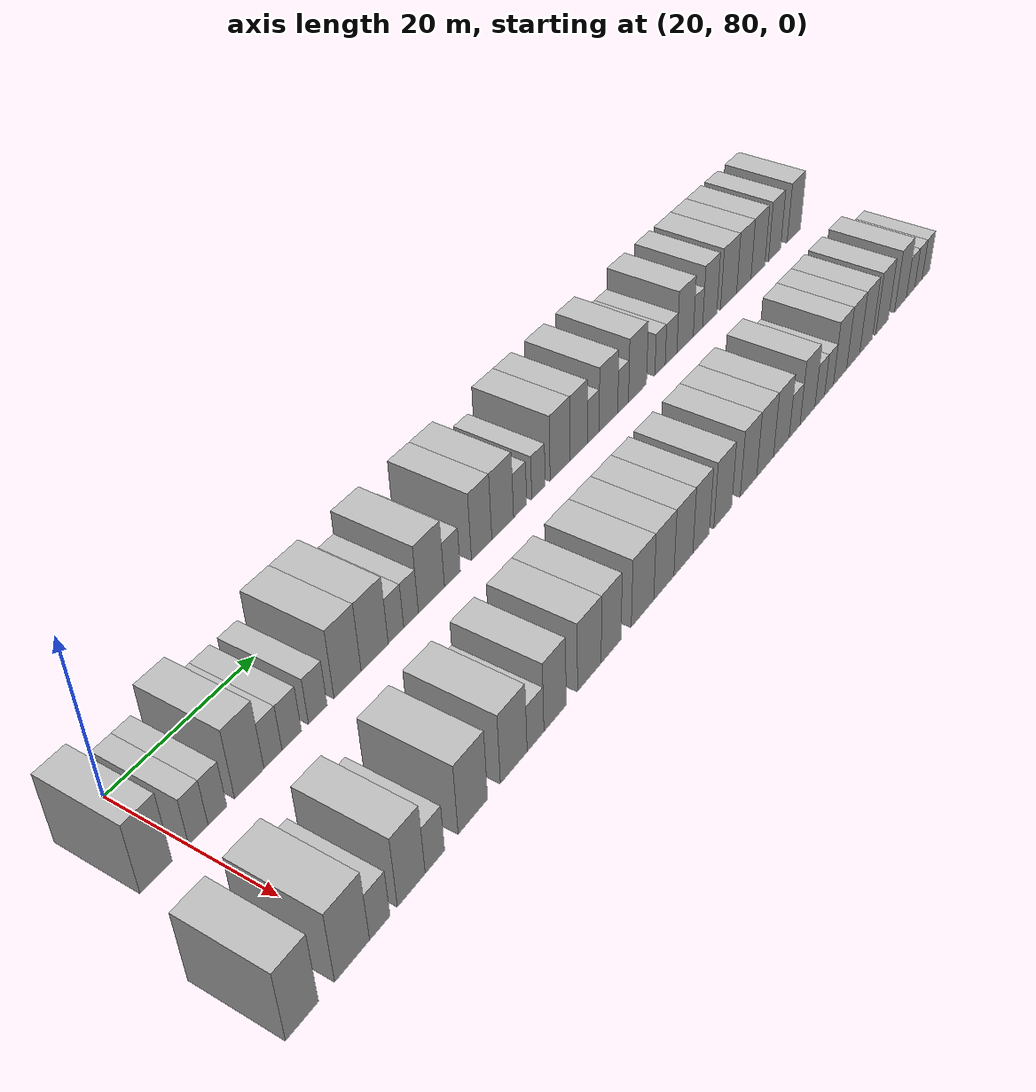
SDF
<sdf version="1.6">
 <world name="default">
  <model name="building_62">
   <static>1</static>
   <pose>25.0000 76.0917 0 0.000000 0.000000 0.000000</pose>
   <link name="link">
    <pose>0 0 4.50 0 0 0</pose>
    <collision name="collision"><geometry><box><size>10.0000 3.8404 9.0000</size></box></geometry></collision>
    <visual name="visual">
     <cast_shadows>0</cast_shadows>
     <geometry><box><size>10.0000 3.8404 9.0000</size></box></geometry>
     <material>
      <script>
       <uri>model://HANNAS_wall/materials/scripts</uri>
       <uri>model://HANNAS_wall/materials/textures</uri>
       <name>vrc/HANNAS_wall</name>
      </script>
     </material>
    </visual>
   </link>
  </model>
  <model name="building_63">
   <static>1</static>
   <pose>25.0000 81.2333 0 0.000000 0.000000 0.000000</pose>
   <link name="link">
    <pose>0 0 3.00 0 0 0</pose>
    <collision name="collision"><geometry><box><size>10.0000 2.4429 6.0000</size></box></geometry></collision>
    <visual name="visual">
     <cast_shadows>0</cast_shadows>
     <geometry><box><size>10.0000 2.4429 6.0000</size></box></geometry>
     <material>
      <script>
       <uri>model://HANNAS_wall/materials/scripts</uri>
       <uri>model://HANNAS_wall/materials/textures</uri>
       <name>vrc/HANNAS_wall</name>
      </script>
     </material>
    </visual>
   </link>
  </model>
  <model name="building_64">
   <static>1</static>
   <pose>25.0000 83.6559 0 0.000000 0.000000 0.000000</pose>
   <link name="link">
    <pose>0 0 3.00 0 0 0</pose>
    <collision name="collision"><geometry><box><size>10.0000 2.4022 6.0000</size></box></geometry></collision>
    <visual name="visual">
     <cast_shadows>0</cast_shadows>
     <geometry><box><size>10.0000 2.4022 6.0000</size></box></geometry>
     <material>
      <script>
       <uri>model://HANNAS_wall/materials/scripts</uri>
       <uri>model://HANNAS_wall/materials/textures</uri>
       <name>vrc/HANNAS_wall</name>
      </script>
     </material>
    </visual>
   </link>
  </model>
  <model name="building_65">
   <static>1</static>
   <pose>25.0000 87.8234 0 0.000000 0.000000 0.000000</pose>
   <link name="link">
    <pose>0 0 4.50 0 0 0</pose>
    <collision name="collision"><geometry><box><size>10.0000 3.9328 9.0000</size></box></geometry></collision>
    <visual name="visual">
     <cast_shadows>0</cast_shadows>
     <geometry><box><size>10.0000 3.9328 9.0000</size></box></geometry>
     <material>
      <script>
       <uri>model://HANNAS_wall/materials/scripts</uri>
       <uri>model://HANNAS_wall/materials/textures</uri>
       <name>vrc/HANNAS_wall</name>
      </script>
     </material>
    </visual>
   </link>
  </model>
  <model name="building_66">
   <static>1</static>
   <pose>25.0000 91.0363 0 0.000000 0.000000 0.000000</pose>
   <link name="link">
    <pose>0 0 3.00 0 0 0</pose>
    <collision name="collision"><geometry><box><size>10.0000 2.4929 6.0000</size></box></geometry></collision>
    <visual name="visual">
     <cast_shadows>0</cast_shadows>
     <geometry><box><size>10.0000 2.4929 6.0000</size></box></geometry>
     <material>
      <script>
       <uri>model://HANNAS_wall/materials/scripts</uri>
       <uri>model://HANNAS_wall/materials/textures</uri>
       <name>vrc/HANNAS_wall</name>
      </script>
     </material>
    </visual>
   </link>
  </model>
  <model name="building_67">
   <static>1</static>
   <pose>25.0000 93.6499 0 0.000000 0.000000 0.000000</pose>
   <link name="link">
    <pose>0 0 3.00 0 0 0</pose>
    <collision name="collision"><geometry><box><size>10.0000 2.7342 6.0000</size></box></geometry></collision>
    <visual name="visual">
     <cast_shadows>0</cast_shadows>
     <geometry><box><size>10.0000 2.7342 6.0000</size></box></geometry>
     <material>
      <script>
       <uri>model://HANNAS_wall/materials/scripts</uri>
       <uri>model://HANNAS_wall/materials/textures</uri>
       <name>vrc/HANNAS_wall</name>
      </script>
     </material>
    </visual>
   </link>
  </model>
  <model name="building_68">
   <static>1</static>
   <pose>25.0000 97.3795 0 0.000000 0.000000 0.000000</pose>
   <link name="link">
    <pose>0 0 3.00 0 0 0</pose>
    <collision name="collision"><geometry><box><size>10.0000 2.7251 6.0000</size></box></geometry></collision>
    <visual name="visual">
     <cast_shadows>0</cast_shadows>
     <geometry><box><size>10.0000 2.7251 6.0000</size></box></geometry>
     <material>
      <script>
       <uri>model://HANNAS_wall/materials/scripts</uri>
       <uri>model://HANNAS_wall/materials/textures</uri>
       <name>vrc/HANNAS_wall</name>
      </script>
     </material>
    </visual>
   </link>
  </model>
  <model name="building_69">
   <static>1</static>
   <pose>25.0000 101.8052 0 0.000000 0.000000 0.000000</pose>
   <link name="link">
    <pose>0 0 4.50 0 0 0</pose>
    <collision name="collision"><geometry><box><size>10.0000 4.1262 9.0000</size></box></geometry></collision>
    <visual name="visual">
     <cast_shadows>0</cast_shadows>
     <geometry><box><size>10.0000 4.1262 9.0000</size></box></geometry>
     <material>
      <script>
       <uri>model://HANNAS_wall/materials/scripts</uri>
       <uri>model://HANNAS_wall/materials/textures</uri>
       <name>vrc/HANNAS_wall</name>
      </script>
     </material>
    </visual>
   </link>
  </model>
  <model name="building_70">
   <static>1</static>
   <pose>25.0000 106.0009 0 0.000000 0.000000 0.000000</pose>
   <link name="link">
    <pose>0 0 4.50 0 0 0</pose>
    <collision name="collision"><geometry><box><size>10.0000 4.2651 9.0000</size></box></geometry></collision>
    <visual name="visual">
     <cast_shadows>0</cast_shadows>
     <geometry><box><size>10.0000 4.2651 9.0000</size></box></geometry>
     <material>
      <script>
       <uri>model://HANNAS_wall/materials/scripts</uri>
       <uri>model://HANNAS_wall/materials/textures</uri>
       <name>vrc/HANNAS_wall</name>
      </script>
     </material>
    </visual>
   </link>
  </model>
  <model name="building_71">
   <static>1</static>
   <pose>25.0000 109.3912 0 0.000000 0.000000 0.000000</pose>
   <link name="link">
    <pose>0 0 3.00 0 0 0</pose>
    <collision name="collision"><geometry><box><size>10.0000 2.5154 6.0000</size></box></geometry></collision>
    <visual name="visual">
     <cast_shadows>0</cast_shadows>
     <geometry><box><size>10.0000 2.5154 6.0000</size></box></geometry>
     <material>
      <script>
       <uri>model://HANNAS_wall/materials/scripts</uri>
       <uri>model://HANNAS_wall/materials/textures</uri>
       <name>vrc/HANNAS_wall</name>
      </script>
     </material>
    </visual>
   </link>
  </model>
  <model name="building_72">
   <static>1</static>
   <pose>25.0000 111.8685 0 0.000000 0.000000 0.000000</pose>
   <link name="link">
    <pose>0 0 3.00 0 0 0</pose>
    <collision name="collision"><geometry><box><size>10.0000 2.4392 6.0000</size></box></geometry></collision>
    <visual name="visual">
     <cast_shadows>0</cast_shadows>
     <geometry><box><size>10.0000 2.4392 6.0000</size></box></geometry>
     <material>
      <script>
       <uri>model://HANNAS_wall/materials/scripts</uri>
       <uri>model://HANNAS_wall/materials/textures</uri>
       <name>vrc/HANNAS_wall</name>
      </script>
     </material>
    </visual>
   </link>
  </model>
  <model name="building_73">
   <static>1</static>
   <pose>25.0000 115.3082 0 0.000000 0.000000 0.000000</pose>
   <link name="link">
    <pose>0 0 4.50 0 0 0</pose>
    <collision name="collision"><geometry><box><size>10.0000 4.4402 9.0000</size></box></geometry></collision>
    <visual name="visual">
     <cast_shadows>0</cast_shadows>
     <geometry><box><size>10.0000 4.4402 9.0000</size></box></geometry>
     <material>
      <script>
       <uri>model://HANNAS_wall/materials/scripts</uri>
       <uri>model://HANNAS_wall/materials/textures</uri>
       <name>vrc/HANNAS_wall</name>
      </script>
     </material>
    </visual>
   </link>
  </model>
  <model name="building_74">
   <static>1</static>
   <pose>25.0000 118.9179 0 0.000000 0.000000 0.000000</pose>
   <link name="link">
    <pose>0 0 3.00 0 0 0</pose>
    <collision name="collision"><geometry><box><size>10.0000 2.7792 6.0000</size></box></geometry></collision>
    <visual name="visual">
     <cast_shadows>0</cast_shadows>
     <geometry><box><size>10.0000 2.7792 6.0000</size></box></geometry>
     <material>
      <script>
       <uri>model://HANNAS_wall/materials/scripts</uri>
       <uri>model://HANNAS_wall/materials/textures</uri>
       <name>vrc/HANNAS_wall</name>
      </script>
     </material>
    </visual>
   </link>
  </model>
  <model name="building_75">
   <static>1</static>
   <pose>25.0000 124.1713 0 0.000000 0.000000 0.000000</pose>
   <link name="link">
    <pose>0 0 4.50 0 0 0</pose>
    <collision name="collision"><geometry><box><size>10.0000 3.7276 9.0000</size></box></geometry></collision>
    <visual name="visual">
     <cast_shadows>0</cast_shadows>
     <geometry><box><size>10.0000 3.7276 9.0000</size></box></geometry>
     <material>
      <script>
       <uri>model://HANNAS_wall/materials/scripts</uri>
       <uri>model://HANNAS_wall/materials/textures</uri>
       <name>vrc/HANNAS_wall</name>
      </script>
     </material>
    </visual>
   </link>
  </model>
  <model name="building_76">
   <static>1</static>
   <pose>25.0000 128.0973 0 0.000000 0.000000 0.000000</pose>
   <link name="link">
    <pose>0 0 4.50 0 0 0</pose>
    <collision name="collision"><geometry><box><size>10.0000 4.1245 9.0000</size></box></geometry></collision>
    <visual name="visual">
     <cast_shadows>0</cast_shadows>
     <geometry><box><size>10.0000 4.1245 9.0000</size></box></geometry>
     <material>
      <script>
       <uri>model://HANNAS_wall/materials/scripts</uri>
       <uri>model://HANNAS_wall/materials/textures</uri>
       <name>vrc/HANNAS_wall</name>
      </script>
     </material>
    </visual>
   </link>
  </model>
  <model name="building_77">
   <static>1</static>
   <pose>25.0000 131.4325 0 0.000000 0.000000 0.000000</pose>
   <link name="link">
    <pose>0 0 3.00 0 0 0</pose>
    <collision name="collision"><geometry><box><size>10.0000 2.5459 6.0000</size></box></geometry></collision>
    <visual name="visual">
     <cast_shadows>0</cast_shadows>
     <geometry><box><size>10.0000 2.5459 6.0000</size></box></geometry>
     <material>
      <script>
       <uri>model://HANNAS_wall/materials/scripts</uri>
       <uri>model://HANNAS_wall/materials/textures</uri>
       <name>vrc/HANNAS_wall</name>
      </script>
     </material>
    </visual>
   </link>
  </model>
  <model name="building_78">
   <static>1</static>
   <pose>25.0000 135.0507 0 0.000000 0.000000 0.000000</pose>
   <link name="link">
    <pose>0 0 3.00 0 0 0</pose>
    <collision name="collision"><geometry><box><size>10.0000 2.6905 6.0000</size></box></geometry></collision>
    <visual name="visual">
     <cast_shadows>0</cast_shadows>
     <geometry><box><size>10.0000 2.6905 6.0000</size></box></geometry>
     <material>
      <script>
       <uri>model://HANNAS_wall/materials/scripts</uri>
       <uri>model://HANNAS_wall/materials/textures</uri>
       <name>vrc/HANNAS_wall</name>
      </script>
     </material>
    </visual>
   </link>
  </model>
  <model name="building_79">
   <static>1</static>
   <pose>25.0000 139.4614 0 0.000000 0.000000 0.000000</pose>
   <link name="link">
    <pose>0 0 4.50 0 0 0</pose>
    <collision name="collision"><geometry><box><size>10.0000 4.1310 9.0000</size></box></geometry></collision>
    <visual name="visual">
     <cast_shadows>0</cast_shadows>
     <geometry><box><size>10.0000 4.1310 9.0000</size></box></geometry>
     <material>
      <script>
       <uri>model://HANNAS_wall/materials/scripts</uri>
       <uri>model://HANNAS_wall/materials/textures</uri>
       <name>vrc/HANNAS_wall</name>
      </script>
     </material>
    </visual>
   </link>
  </model>
  <model name="building_80">
   <static>1</static>
   <pose>25.0000 143.3464 0 0.000000 0.000000 0.000000</pose>
   <link name="link">
    <pose>0 0 4.50 0 0 0</pose>
    <collision name="collision"><geometry><box><size>10.0000 3.6390 9.0000</size></box></geometry></collision>
    <visual name="visual">
     <cast_shadows>0</cast_shadows>
     <geometry><box><size>10.0000 3.6390 9.0000</size></box></geometry>
     <material>
      <script>
       <uri>model://HANNAS_wall/materials/scripts</uri>
       <uri>model://HANNAS_wall/materials/textures</uri>
       <name>vrc/HANNAS_wall</name>
      </script>
     </material>
    </visual>
   </link>
  </model>
  <model name="building_81">
   <static>1</static>
   <pose>25.0000 146.4726 0 0.000000 0.000000 0.000000</pose>
   <link name="link">
    <pose>0 0 3.00 0 0 0</pose>
    <collision name="collision"><geometry><box><size>10.0000 2.6134 6.0000</size></box></geometry></collision>
    <visual name="visual">
     <cast_shadows>0</cast_shadows>
     <geometry><box><size>10.0000 2.6134 6.0000</size></box></geometry>
     <material>
      <script>
       <uri>model://HANNAS_wall/materials/scripts</uri>
       <uri>model://HANNAS_wall/materials/textures</uri>
       <name>vrc/HANNAS_wall</name>
      </script>
     </material>
    </visual>
   </link>
  </model>
  <model name="building_82">
   <static>1</static>
   <pose>25.0000 149.8544 0 0.000000 0.000000 0.000000</pose>
   <link name="link">
    <pose>0 0 4.50 0 0 0</pose>
    <collision name="collision"><geometry><box><size>10.0000 4.1502 9.0000</size></box></geometry></collision>
    <visual name="visual">
     <cast_shadows>0</cast_shadows>
     <geometry><box><size>10.0000 4.1502 9.0000</size></box></geometry>
     <material>
      <script>
       <uri>model://HANNAS_wall/materials/scripts</uri>
       <uri>model://HANNAS_wall/materials/textures</uri>
       <name>vrc/HANNAS_wall</name>
      </script>
     </material>
    </visual>
   </link>
  </model>
  <model name="building_83">
   <static>1</static>
   <pose>25.0000 153.1535 0 0.000000 0.000000 0.000000</pose>
   <link name="link">
    <pose>0 0 3.00 0 0 0</pose>
    <collision name="collision"><geometry><box><size>10.0000 2.4481 6.0000</size></box></geometry></collision>
    <visual name="visual">
     <cast_shadows>0</cast_shadows>
     <geometry><box><size>10.0000 2.4481 6.0000</size></box></geometry>
     <material>
      <script>
       <uri>model://HANNAS_wall/materials/scripts</uri>
       <uri>model://HANNAS_wall/materials/textures</uri>
       <name>vrc/HANNAS_wall</name>
      </script>
     </material>
    </visual>
   </link>
  </model>
  <model name="building_84">
   <static>1</static>
   <pose>25.0000 156.4888 0 0.000000 0.000000 0.000000</pose>
   <link name="link">
    <pose>0 0 4.50 0 0 0</pose>
    <collision name="collision"><geometry><box><size>10.0000 4.2226 9.0000</size></box></geometry></collision>
    <visual name="visual">
     <cast_shadows>0</cast_shadows>
     <geometry><box><size>10.0000 4.2226 9.0000</size></box></geometry>
     <material>
      <script>
       <uri>model://HANNAS_wall/materials/scripts</uri>
       <uri>model://HANNAS_wall/materials/textures</uri>
       <name>vrc/HANNAS_wall</name>
      </script>
     </material>
    </visual>
   </link>
  </model>
  <model name="building_85">
   <static>1</static>
   <pose>25.0000 161.8609 0 0.000000 0.000000 0.000000</pose>
   <link name="link">
    <pose>0 0 3.00 0 0 0</pose>
    <collision name="collision"><geometry><box><size>10.0000 2.5215 6.0000</size></box></geometry></collision>
    <visual name="visual">
     <cast_shadows>0</cast_shadows>
     <geometry><box><size>10.0000 2.5215 6.0000</size></box></geometry>
     <material>
      <script>
       <uri>model://HANNAS_wall/materials/scripts</uri>
       <uri>model://HANNAS_wall/materials/textures</uri>
       <name>vrc/HANNAS_wall</name>
      </script>
     </material>
    </visual>
   </link>
  </model>
  <model name="building_86">
   <static>1</static>
   <pose>25.0000 164.5614 0 0.000000 0.000000 0.000000</pose>
   <link name="link">
    <pose>0 0 3.00 0 0 0</pose>
    <collision name="collision"><geometry><box><size>10.0000 2.8797 6.0000</size></box></geometry></collision>
    <visual name="visual">
     <cast_shadows>0</cast_shadows>
     <geometry><box><size>10.0000 2.8797 6.0000</size></box></geometry>
     <material>
      <script>
       <uri>model://HANNAS_wall/materials/scripts</uri>
       <uri>model://HANNAS_wall/materials/textures</uri>
       <name>vrc/HANNAS_wall</name>
      </script>
     </material>
    </visual>
   </link>
  </model>
  <model name="building_87">
   <static>1</static>
   <pose>25.0000 168.0948 0 0.000000 0.000000 0.000000</pose>
   <link name="link">
    <pose>0 0 4.50 0 0 0</pose>
    <collision name="collision"><geometry><box><size>10.0000 4.1870 9.0000</size></box></geometry></collision>
    <visual name="visual">
     <cast_shadows>0</cast_shadows>
     <geometry><box><size>10.0000 4.1870 9.0000</size></box></geometry>
     <material>
      <script>
       <uri>model://HANNAS_wall/materials/scripts</uri>
       <uri>model://HANNAS_wall/materials/textures</uri>
       <name>vrc/HANNAS_wall</name>
      </script>
     </material>
    </visual>
   </link>
  </model>
  <model name="building_88">
   <static>1</static>
   <pose>25.0000 171.4040 0 0.000000 0.000000 0.000000</pose>
   <link name="link">
    <pose>0 0 3.00 0 0 0</pose>
    <collision name="collision"><geometry><box><size>10.0000 2.4314 6.0000</size></box></geometry></collision>
    <visual name="visual">
     <cast_shadows>0</cast_shadows>
     <geometry><box><size>10.0000 2.4314 6.0000</size></box></geometry>
     <material>
      <script>
       <uri>model://HANNAS_wall/materials/scripts</uri>
       <uri>model://HANNAS_wall/materials/textures</uri>
       <name>vrc/HANNAS_wall</name>
      </script>
     </material>
    </visual>
   </link>
  </model>
  <model name="building_89">
   <static>1</static>
   <pose>25.0000 174.5151 0 0.000000 0.000000 0.000000</pose>
   <link name="link">
    <pose>0 0 4.50 0 0 0</pose>
    <collision name="collision"><geometry><box><size>10.0000 3.7908 9.0000</size></box></geometry></collision>
    <visual name="visual">
     <cast_shadows>0</cast_shadows>
     <geometry><box><size>10.0000 3.7908 9.0000</size></box></geometry>
     <material>
      <script>
       <uri>model://HANNAS_wall/materials/scripts</uri>
       <uri>model://HANNAS_wall/materials/textures</uri>
       <name>vrc/HANNAS_wall</name>
      </script>
     </material>
    </visual>
   </link>
  </model>
  <model name="building_90">
   <static>1</static>
   <pose>25.0000 179.6231 0 0.000000 0.000000 0.000000</pose>
   <link name="link">
    <pose>0 0 4.50 0 0 0</pose>
    <collision name="collision"><geometry><box><size>10.0000 4.4250 9.0000</size></box></geometry></collision>
    <visual name="visual">
     <cast_shadows>0</cast_shadows>
     <geometry><box><size>10.0000 4.4250 9.0000</size></box></geometry>
     <material>
      <script>
       <uri>model://HANNAS_wall/materials/scripts</uri>
       <uri>model://HANNAS_wall/materials/textures</uri>
       <name>vrc/HANNAS_wall</name>
      </script>
     </material>
    </visual>
   </link>
  </model>
  <model name="building_91">
   <static>1</static>
   <pose>25.0000 183.8625 0 0.000000 0.000000 0.000000</pose>
   <link name="link">
    <pose>0 0 4.50 0 0 0</pose>
    <collision name="collision"><geometry><box><size>10.0000 4.0538 9.0000</size></box></geometry></collision>
    <visual name="visual">
     <cast_shadows>0</cast_shadows>
     <geometry><box><size>10.0000 4.0538 9.0000</size></box></geometry>
     <material>
      <script>
       <uri>model://HANNAS_wall/materials/scripts</uri>
       <uri>model://HANNAS_wall/materials/textures</uri>
       <name>vrc/HANNAS_wall</name>
      </script>
     </material>
    </visual>
   </link>
  </model>
  <model name="building_92">
   <static>1</static>
   <pose>25.0000 187.9202 0 0.000000 0.000000 0.000000</pose>
   <link name="link">
    <pose>0 0 4.50 0 0 0</pose>
    <collision name="collision"><geometry><box><size>10.0000 4.0617 9.0000</size></box></geometry></collision>
    <visual name="visual">
     <cast_shadows>0</cast_shadows>
     <geometry><box><size>10.0000 4.0617 9.0000</size></box></geometry>
     <material>
      <script>
       <uri>model://HANNAS_wall/materials/scripts</uri>
       <uri>model://HANNAS_wall/materials/textures</uri>
       <name>vrc/HANNAS_wall</name>
      </script>
     </material>
    </visual>
   </link>
  </model>
  <model name="building_93">
   <static>1</static>
   <pose>25.0000 192.7844 0 0.000000 0.000000 0.000000</pose>
   <link name="link">
    <pose>0 0 4.50 0 0 0</pose>
    <collision name="collision"><geometry><box><size>10.0000 3.6667 9.0000</size></box></geometry></collision>
    <visual name="visual">
     <cast_shadows>0</cast_shadows>
     <geometry><box><size>10.0000 3.6667 9.0000</size></box></geometry>
     <material>
      <script>
       <uri>model://HANNAS_wall/materials/scripts</uri>
       <uri>model://HANNAS_wall/materials/textures</uri>
       <name>vrc/HANNAS_wall</name>
      </script>
     </material>
    </visual>
   </link>
  </model>
  <model name="building_94">
   <static>1</static>
   <pose>25.0000 198.6874 0 0.000000 0.000000 0.000000</pose>
   <link name="link">
    <pose>0 0 4.50 0 0 0</pose>
    <collision name="collision"><geometry><box><size>10.0000 4.1394 9.0000</size></box></geometry></collision>
    <visual name="visual">
     <cast_shadows>0</cast_shadows>
     <geometry><box><size>10.0000 4.1394 9.0000</size></box></geometry>
     <material>
      <script>
       <uri>model://HANNAS_wall/materials/scripts</uri>
       <uri>model://HANNAS_wall/materials/textures</uri>
       <name>vrc/HANNAS_wall</name>
      </script>
     </material>
    </visual>
   </link>
  </model>
  <model name="building_162">
   <static>1</static>
   <pose>44.0000 72.1664 0 0.000000 0.000000 0.000000</pose>
   <link name="link">
    <pose>0 0 4.50 0 0 0</pose>
    <collision name="collision"><geometry><box><size>10.0000 3.9678 9.0000</size></box></geometry></collision>
    <visual name="visual">
     <cast_shadows>0</cast_shadows>
     <geometry><box><size>10.0000 3.9678 9.0000</size></box></geometry>
     <material>
      <script>
       <uri>model://HANNAS_wall/materials/scripts</uri>
       <uri>model://HANNAS_wall/materials/textures</uri>
       <name>vrc/HANNAS_wall</name>
      </script>
     </material>
    </visual>
   </link>
  </model>
  <model name="building_163">
   <static>1</static>
   <pose>44.0000 78.3973 0 0.000000 0.000000 0.000000</pose>
   <link name="link">
    <pose>0 0 4.50 0 0 0</pose>
    <collision name="collision"><geometry><box><size>10.0000 4.4941 9.0000</size></box></geometry></collision>
    <visual name="visual">
     <cast_shadows>0</cast_shadows>
     <geometry><box><size>10.0000 4.4941 9.0000</size></box></geometry>
     <material>
      <script>
       <uri>model://HANNAS_wall/materials/scripts</uri>
       <uri>model://HANNAS_wall/materials/textures</uri>
       <name>vrc/HANNAS_wall</name>
      </script>
     </material>
    </visual>
   </link>
  </model>
  <model name="building_164">
   <static>1</static>
   <pose>44.0000 82.0053 0 0.000000 0.000000 0.000000</pose>
   <link name="link">
    <pose>0 0 3.00 0 0 0</pose>
    <collision name="collision"><geometry><box><size>10.0000 2.7219 6.0000</size></box></geometry></collision>
    <visual name="visual">
     <cast_shadows>0</cast_shadows>
     <geometry><box><size>10.0000 2.7219 6.0000</size></box></geometry>
     <material>
      <script>
       <uri>model://HANNAS_wall/materials/scripts</uri>
       <uri>model://HANNAS_wall/materials/textures</uri>
       <name>vrc/HANNAS_wall</name>
      </script>
     </material>
    </visual>
   </link>
  </model>
  <model name="building_165">
   <static>1</static>
   <pose>44.0000 86.3072 0 0.000000 0.000000 0.000000</pose>
   <link name="link">
    <pose>0 0 4.50 0 0 0</pose>
    <collision name="collision"><geometry><box><size>10.0000 3.8818 9.0000</size></box></geometry></collision>
    <visual name="visual">
     <cast_shadows>0</cast_shadows>
     <geometry><box><size>10.0000 3.8818 9.0000</size></box></geometry>
     <material>
      <script>
       <uri>model://HANNAS_wall/materials/scripts</uri>
       <uri>model://HANNAS_wall/materials/textures</uri>
       <name>vrc/HANNAS_wall</name>
      </script>
     </material>
    </visual>
   </link>
  </model>
  <model name="building_166">
   <static>1</static>
   <pose>44.0000 89.6409 0 0.000000 0.000000 0.000000</pose>
   <link name="link">
    <pose>0 0 3.00 0 0 0</pose>
    <collision name="collision"><geometry><box><size>10.0000 2.7856 6.0000</size></box></geometry></collision>
    <visual name="visual">
     <cast_shadows>0</cast_shadows>
     <geometry><box><size>10.0000 2.7856 6.0000</size></box></geometry>
     <material>
      <script>
       <uri>model://HANNAS_wall/materials/scripts</uri>
       <uri>model://HANNAS_wall/materials/textures</uri>
       <name>vrc/HANNAS_wall</name>
      </script>
     </material>
    </visual>
   </link>
  </model>
  <model name="building_167">
   <static>1</static>
   <pose>44.0000 95.2798 0 0.000000 0.000000 0.000000</pose>
   <link name="link">
    <pose>0 0 4.50 0 0 0</pose>
    <collision name="collision"><geometry><box><size>10.0000 4.4922 9.0000</size></box></geometry></collision>
    <visual name="visual">
     <cast_shadows>0</cast_shadows>
     <geometry><box><size>10.0000 4.4922 9.0000</size></box></geometry>
     <material>
      <script>
       <uri>model://HANNAS_wall/materials/scripts</uri>
       <uri>model://HANNAS_wall/materials/textures</uri>
       <name>vrc/HANNAS_wall</name>
      </script>
     </material>
    </visual>
   </link>
  </model>
  <model name="building_168">
   <static>1</static>
   <pose>44.0000 101.6947 0 0.000000 0.000000 0.000000</pose>
   <link name="link">
    <pose>0 0 4.50 0 0 0</pose>
    <collision name="collision"><geometry><box><size>10.0000 4.3375 9.0000</size></box></geometry></collision>
    <visual name="visual">
     <cast_shadows>0</cast_shadows>
     <geometry><box><size>10.0000 4.3375 9.0000</size></box></geometry>
     <material>
      <script>
       <uri>model://HANNAS_wall/materials/scripts</uri>
       <uri>model://HANNAS_wall/materials/textures</uri>
       <name>vrc/HANNAS_wall</name>
      </script>
     </material>
    </visual>
   </link>
  </model>
  <model name="building_169">
   <static>1</static>
   <pose>44.0000 105.2642 0 0.000000 0.000000 0.000000</pose>
   <link name="link">
    <pose>0 0 3.00 0 0 0</pose>
    <collision name="collision"><geometry><box><size>10.0000 2.8015 6.0000</size></box></geometry></collision>
    <visual name="visual">
     <cast_shadows>0</cast_shadows>
     <geometry><box><size>10.0000 2.8015 6.0000</size></box></geometry>
     <material>
      <script>
       <uri>model://HANNAS_wall/materials/scripts</uri>
       <uri>model://HANNAS_wall/materials/textures</uri>
       <name>vrc/HANNAS_wall</name>
      </script>
     </material>
    </visual>
   </link>
  </model>
  <model name="building_170">
   <static>1</static>
   <pose>44.0000 108.5858 0 0.000000 0.000000 0.000000</pose>
   <link name="link">
    <pose>0 0 4.50 0 0 0</pose>
    <collision name="collision"><geometry><box><size>10.0000 3.8419 9.0000</size></box></geometry></collision>
    <visual name="visual">
     <cast_shadows>0</cast_shadows>
     <geometry><box><size>10.0000 3.8419 9.0000</size></box></geometry>
     <material>
      <script>
       <uri>model://HANNAS_wall/materials/scripts</uri>
       <uri>model://HANNAS_wall/materials/textures</uri>
       <name>vrc/HANNAS_wall</name>
      </script>
     </material>
    </visual>
   </link>
  </model>
  <model name="building_171">
   <static>1</static>
   <pose>44.0000 114.6600 0 0.000000 0.000000 0.000000</pose>
   <link name="link">
    <pose>0 0 4.50 0 0 0</pose>
    <collision name="collision"><geometry><box><size>10.0000 4.3065 9.0000</size></box></geometry></collision>
    <visual name="visual">
     <cast_shadows>0</cast_shadows>
     <geometry><box><size>10.0000 4.3065 9.0000</size></box></geometry>
     <material>
      <script>
       <uri>model://HANNAS_wall/materials/scripts</uri>
       <uri>model://HANNAS_wall/materials/textures</uri>
       <name>vrc/HANNAS_wall</name>
      </script>
     </material>
    </visual>
   </link>
  </model>
  <model name="building_172">
   <static>1</static>
   <pose>44.0000 118.6792 0 0.000000 0.000000 0.000000</pose>
   <link name="link">
    <pose>0 0 4.50 0 0 0</pose>
    <collision name="collision"><geometry><box><size>10.0000 3.7319 9.0000</size></box></geometry></collision>
    <visual name="visual">
     <cast_shadows>0</cast_shadows>
     <geometry><box><size>10.0000 3.7319 9.0000</size></box></geometry>
     <material>
      <script>
       <uri>model://HANNAS_wall/materials/scripts</uri>
       <uri>model://HANNAS_wall/materials/textures</uri>
       <name>vrc/HANNAS_wall</name>
      </script>
     </material>
    </visual>
   </link>
  </model>
  <model name="building_173">
   <static>1</static>
   <pose>44.0000 124.7796 0 0.000000 0.000000 0.000000</pose>
   <link name="link">
    <pose>0 0 4.50 0 0 0</pose>
    <collision name="collision"><geometry><box><size>10.0000 4.4688 9.0000</size></box></geometry></collision>
    <visual name="visual">
     <cast_shadows>0</cast_shadows>
     <geometry><box><size>10.0000 4.4688 9.0000</size></box></geometry>
     <material>
      <script>
       <uri>model://HANNAS_wall/materials/scripts</uri>
       <uri>model://HANNAS_wall/materials/textures</uri>
       <name>vrc/HANNAS_wall</name>
      </script>
     </material>
    </visual>
   </link>
  </model>
  <model name="building_174">
   <static>1</static>
   <pose>44.0000 129.0940 0 0.000000 0.000000 0.000000</pose>
   <link name="link">
    <pose>0 0 4.50 0 0 0</pose>
    <collision name="collision"><geometry><box><size>10.0000 4.1601 9.0000</size></box></geometry></collision>
    <visual name="visual">
     <cast_shadows>0</cast_shadows>
     <geometry><box><size>10.0000 4.1601 9.0000</size></box></geometry>
     <material>
      <script>
       <uri>model://HANNAS_wall/materials/scripts</uri>
       <uri>model://HANNAS_wall/materials/textures</uri>
       <name>vrc/HANNAS_wall</name>
      </script>
     </material>
    </visual>
   </link>
  </model>
  <model name="building_175">
   <static>1</static>
   <pose>44.0000 133.1947 0 0.000000 0.000000 0.000000</pose>
   <link name="link">
    <pose>0 0 4.50 0 0 0</pose>
    <collision name="collision"><geometry><box><size>10.0000 4.0413 9.0000</size></box></geometry></collision>
    <visual name="visual">
     <cast_shadows>0</cast_shadows>
     <geometry><box><size>10.0000 4.0413 9.0000</size></box></geometry>
     <material>
      <script>
       <uri>model://HANNAS_wall/materials/scripts</uri>
       <uri>model://HANNAS_wall/materials/textures</uri>
       <name>vrc/HANNAS_wall</name>
      </script>
     </material>
    </visual>
   </link>
  </model>
  <model name="building_176">
   <static>1</static>
   <pose>44.0000 137.0296 0 0.000000 0.000000 0.000000</pose>
   <link name="link">
    <pose>0 0 4.50 0 0 0</pose>
    <collision name="collision"><geometry><box><size>10.0000 3.6285 9.0000</size></box></geometry></collision>
    <visual name="visual">
     <cast_shadows>0</cast_shadows>
     <geometry><box><size>10.0000 3.6285 9.0000</size></box></geometry>
     <material>
      <script>
       <uri>model://HANNAS_wall/materials/scripts</uri>
       <uri>model://HANNAS_wall/materials/textures</uri>
       <name>vrc/HANNAS_wall</name>
      </script>
     </material>
    </visual>
   </link>
  </model>
  <model name="building_177">
   <static>1</static>
   <pose>44.0000 141.8937 0 0.000000 0.000000 0.000000</pose>
   <link name="link">
    <pose>0 0 4.50 0 0 0</pose>
    <collision name="collision"><geometry><box><size>10.0000 4.0997 9.0000</size></box></geometry></collision>
    <visual name="visual">
     <cast_shadows>0</cast_shadows>
     <geometry><box><size>10.0000 4.0997 9.0000</size></box></geometry>
     <material>
      <script>
       <uri>model://HANNAS_wall/materials/scripts</uri>
       <uri>model://HANNAS_wall/materials/textures</uri>
       <name>vrc/HANNAS_wall</name>
      </script>
     </material>
    </visual>
   </link>
  </model>
  <model name="building_178">
   <static>1</static>
   <pose>44.0000 147.9296 0 0.000000 0.000000 0.000000</pose>
   <link name="link">
    <pose>0 0 4.50 0 0 0</pose>
    <collision name="collision"><geometry><box><size>10.0000 3.9721 9.0000</size></box></geometry></collision>
    <visual name="visual">
     <cast_shadows>0</cast_shadows>
     <geometry><box><size>10.0000 3.9721 9.0000</size></box></geometry>
     <material>
      <script>
       <uri>model://HANNAS_wall/materials/scripts</uri>
       <uri>model://HANNAS_wall/materials/textures</uri>
       <name>vrc/HANNAS_wall</name>
      </script>
     </material>
    </visual>
   </link>
  </model>
  <model name="building_179">
   <static>1</static>
   <pose>44.0000 151.9838 0 0.000000 0.000000 0.000000</pose>
   <link name="link">
    <pose>0 0 4.50 0 0 0</pose>
    <collision name="collision"><geometry><box><size>10.0000 4.1363 9.0000</size></box></geometry></collision>
    <visual name="visual">
     <cast_shadows>0</cast_shadows>
     <geometry><box><size>10.0000 4.1363 9.0000</size></box></geometry>
     <material>
      <script>
       <uri>model://HANNAS_wall/materials/scripts</uri>
       <uri>model://HANNAS_wall/materials/textures</uri>
       <name>vrc/HANNAS_wall</name>
      </script>
     </material>
    </visual>
   </link>
  </model>
  <model name="building_180">
   <static>1</static>
   <pose>44.0000 156.0432 0 0.000000 0.000000 0.000000</pose>
   <link name="link">
    <pose>0 0 4.50 0 0 0</pose>
    <collision name="collision"><geometry><box><size>10.0000 3.9824 9.0000</size></box></geometry></collision>
    <visual name="visual">
     <cast_shadows>0</cast_shadows>
     <geometry><box><size>10.0000 3.9824 9.0000</size></box></geometry>
     <material>
      <script>
       <uri>model://HANNAS_wall/materials/scripts</uri>
       <uri>model://HANNAS_wall/materials/textures</uri>
       <name>vrc/HANNAS_wall</name>
      </script>
     </material>
    </visual>
   </link>
  </model>
  <model name="building_181">
   <static>1</static>
   <pose>44.0000 159.4713 0 0.000000 0.000000 0.000000</pose>
   <link name="link">
    <pose>0 0 3.00 0 0 0</pose>
    <collision name="collision"><geometry><box><size>10.0000 2.8738 6.0000</size></box></geometry></collision>
    <visual name="visual">
     <cast_shadows>0</cast_shadows>
     <geometry><box><size>10.0000 2.8738 6.0000</size></box></geometry>
     <material>
      <script>
       <uri>model://HANNAS_wall/materials/scripts</uri>
       <uri>model://HANNAS_wall/materials/textures</uri>
       <name>vrc/HANNAS_wall</name>
      </script>
     </material>
    </visual>
   </link>
  </model>
  <model name="building_182">
   <static>1</static>
   <pose>44.0000 162.9022 0 0.000000 0.000000 0.000000</pose>
   <link name="link">
    <pose>0 0 4.50 0 0 0</pose>
    <collision name="collision"><geometry><box><size>10.0000 3.9879 9.0000</size></box></geometry></collision>
    <visual name="visual">
     <cast_shadows>0</cast_shadows>
     <geometry><box><size>10.0000 3.9879 9.0000</size></box></geometry>
     <material>
      <script>
       <uri>model://HANNAS_wall/materials/scripts</uri>
       <uri>model://HANNAS_wall/materials/textures</uri>
       <name>vrc/HANNAS_wall</name>
      </script>
     </material>
    </visual>
   </link>
  </model>
  <model name="building_183">
   <static>1</static>
   <pose>44.0000 166.2254 0 0.000000 0.000000 0.000000</pose>
   <link name="link">
    <pose>0 0 3.00 0 0 0</pose>
    <collision name="collision"><geometry><box><size>10.0000 2.6585 6.0000</size></box></geometry></collision>
    <visual name="visual">
     <cast_shadows>0</cast_shadows>
     <geometry><box><size>10.0000 2.6585 6.0000</size></box></geometry>
     <material>
      <script>
       <uri>model://HANNAS_wall/materials/scripts</uri>
       <uri>model://HANNAS_wall/materials/textures</uri>
       <name>vrc/HANNAS_wall</name>
      </script>
     </material>
    </visual>
   </link>
  </model>
  <model name="building_184">
   <static>1</static>
   <pose>44.0000 168.7789 0 0.000000 0.000000 0.000000</pose>
   <link name="link">
    <pose>0 0 3.00 0 0 0</pose>
    <collision name="collision"><geometry><box><size>10.0000 2.4486 6.0000</size></box></geometry></collision>
    <visual name="visual">
     <cast_shadows>0</cast_shadows>
     <geometry><box><size>10.0000 2.4486 6.0000</size></box></geometry>
     <material>
      <script>
       <uri>model://HANNAS_wall/materials/scripts</uri>
       <uri>model://HANNAS_wall/materials/textures</uri>
       <name>vrc/HANNAS_wall</name>
      </script>
     </material>
    </visual>
   </link>
  </model>
  <model name="building_185">
   <static>1</static>
   <pose>44.0000 171.9121 0 0.000000 0.000000 0.000000</pose>
   <link name="link">
    <pose>0 0 4.50 0 0 0</pose>
    <collision name="collision"><geometry><box><size>10.0000 3.8178 9.0000</size></box></geometry></collision>
    <visual name="visual">
     <cast_shadows>0</cast_shadows>
     <geometry><box><size>10.0000 3.8178 9.0000</size></box></geometry>
     <material>
      <script>
       <uri>model://HANNAS_wall/materials/scripts</uri>
       <uri>model://HANNAS_wall/materials/textures</uri>
       <name>vrc/HANNAS_wall</name>
      </script>
     </material>
    </visual>
   </link>
  </model>
  <model name="building_186">
   <static>1</static>
   <pose>44.0000 175.7425 0 0.000000 0.000000 0.000000</pose>
   <link name="link">
    <pose>0 0 4.50 0 0 0</pose>
    <collision name="collision"><geometry><box><size>10.0000 3.8431 9.0000</size></box></geometry></collision>
    <visual name="visual">
     <cast_shadows>0</cast_shadows>
     <geometry><box><size>10.0000 3.8431 9.0000</size></box></geometry>
     <material>
      <script>
       <uri>model://HANNAS_wall/materials/scripts</uri>
       <uri>model://HANNAS_wall/materials/textures</uri>
       <name>vrc/HANNAS_wall</name>
      </script>
     </material>
    </visual>
   </link>
  </model>
  <model name="building_187">
   <static>1</static>
   <pose>44.0000 179.5782 0 0.000000 0.000000 0.000000</pose>
   <link name="link">
    <pose>0 0 4.50 0 0 0</pose>
    <collision name="collision"><geometry><box><size>10.0000 3.8283 9.0000</size></box></geometry></collision>
    <visual name="visual">
     <cast_shadows>0</cast_shadows>
     <geometry><box><size>10.0000 3.8283 9.0000</size></box></geometry>
     <material>
      <script>
       <uri>model://HANNAS_wall/materials/scripts</uri>
       <uri>model://HANNAS_wall/materials/textures</uri>
       <name>vrc/HANNAS_wall</name>
      </script>
     </material>
    </visual>
   </link>
  </model>
  <model name="building_188">
   <static>1</static>
   <pose>44.0000 184.4713 0 0.000000 0.000000 0.000000</pose>
   <link name="link">
    <pose>0 0 4.50 0 0 0</pose>
    <collision name="collision"><geometry><box><size>10.0000 3.9578 9.0000</size></box></geometry></collision>
    <visual name="visual">
     <cast_shadows>0</cast_shadows>
     <geometry><box><size>10.0000 3.9578 9.0000</size></box></geometry>
     <material>
      <script>
       <uri>model://HANNAS_wall/materials/scripts</uri>
       <uri>model://HANNAS_wall/materials/textures</uri>
       <name>vrc/HANNAS_wall</name>
      </script>
     </material>
    </visual>
   </link>
  </model>
  <model name="building_189">
   <static>1</static>
   <pose>44.0000 190.3602 0 0.000000 0.000000 0.000000</pose>
   <link name="link">
    <pose>0 0 4.50 0 0 0</pose>
    <collision name="collision"><geometry><box><size>10.0000 3.8201 9.0000</size></box></geometry></collision>
    <visual name="visual">
     <cast_shadows>0</cast_shadows>
     <geometry><box><size>10.0000 3.8201 9.0000</size></box></geometry>
     <material>
      <script>
       <uri>model://HANNAS_wall/materials/scripts</uri>
       <uri>model://HANNAS_wall/materials/textures</uri>
       <name>vrc/HANNAS_wall</name>
      </script>
     </material>
    </visual>
   </link>
  </model>
  <model name="building_190">
   <static>1</static>
   <pose>44.0000 193.6560 0 0.000000 0.000000 0.000000</pose>
   <link name="link">
    <pose>0 0 3.00 0 0 0</pose>
    <collision name="collision"><geometry><box><size>10.0000 2.7717 6.0000</size></box></geometry></collision>
    <visual name="visual">
     <cast_shadows>0</cast_shadows>
     <geometry><box><size>10.0000 2.7717 6.0000</size></box></geometry>
     <material>
      <script>
       <uri>model://HANNAS_wall/materials/scripts</uri>
       <uri>model://HANNAS_wall/materials/textures</uri>
       <name>vrc/HANNAS_wall</name>
      </script>
     </material>
    </visual>
   </link>
  </model>
  <model name="building_191">
   <static>1</static>
   <pose>44.0000 196.3044 0 0.000000 0.000000 0.000000</pose>
   <link name="link">
    <pose>0 0 3.00 0 0 0</pose>
    <collision name="collision"><geometry><box><size>10.0000 2.5251 6.0000</size></box></geometry></collision>
    <visual name="visual">
     <cast_shadows>0</cast_shadows>
     <geometry><box><size>10.0000 2.5251 6.0000</size></box></geometry>
     <material>
      <script>
       <uri>model://HANNAS_wall/materials/scripts</uri>
       <uri>model://HANNAS_wall/materials/textures</uri>
       <name>vrc/HANNAS_wall</name>
      </script>
     </material>
    </visual>
   </link>
  </model>
  <model name="building_192">
   <static>1</static>
   <pose>44.0000 198.8566 0 0.000000 0.000000 0.000000</pose>
   <link name="link">
    <pose>0 0 3.00 0 0 0</pose>
    <collision name="collision"><geometry><box><size>10.0000 2.5792 6.0000</size></box></geometry></collision>
    <visual name="visual">
     <cast_shadows>0</cast_shadows>
     <geometry><box><size>10.0000 2.5792 6.0000</size></box></geometry>
     <material>
      <script>
       <uri>model://HANNAS_wall/materials/scripts</uri>
       <uri>model://HANNAS_wall/materials/textures</uri>
       <name>vrc/HANNAS_wall</name>
      </script>
     </material>
    </visual>
   </link>
  </model>
 </world>
</sdf>
